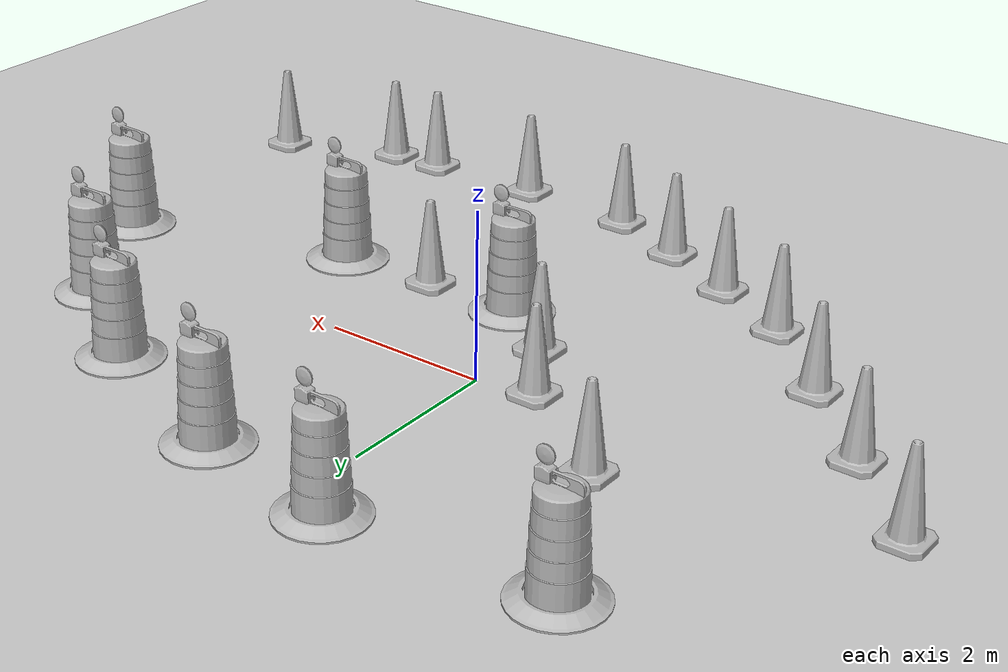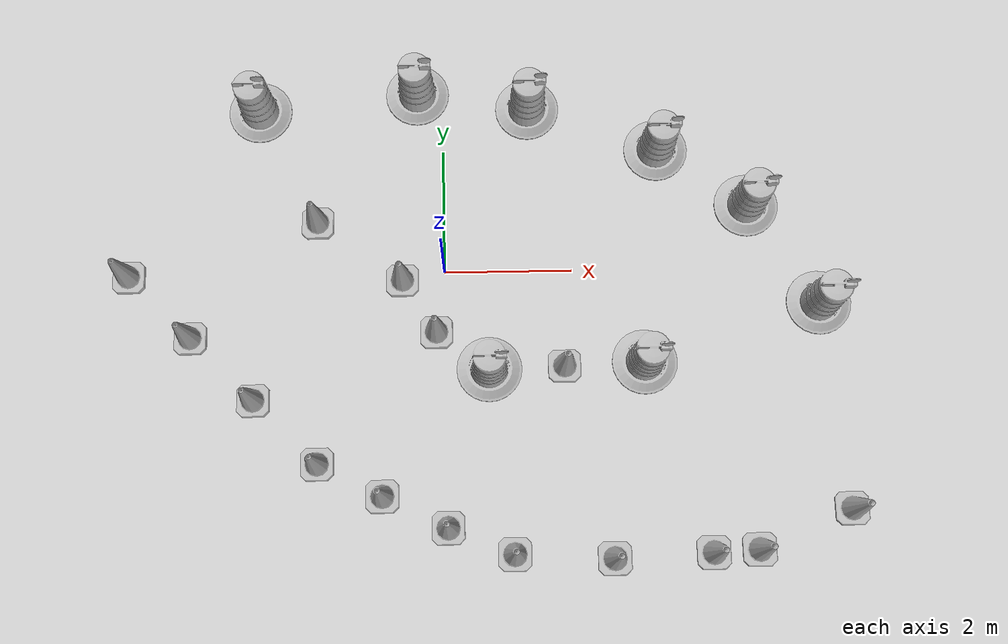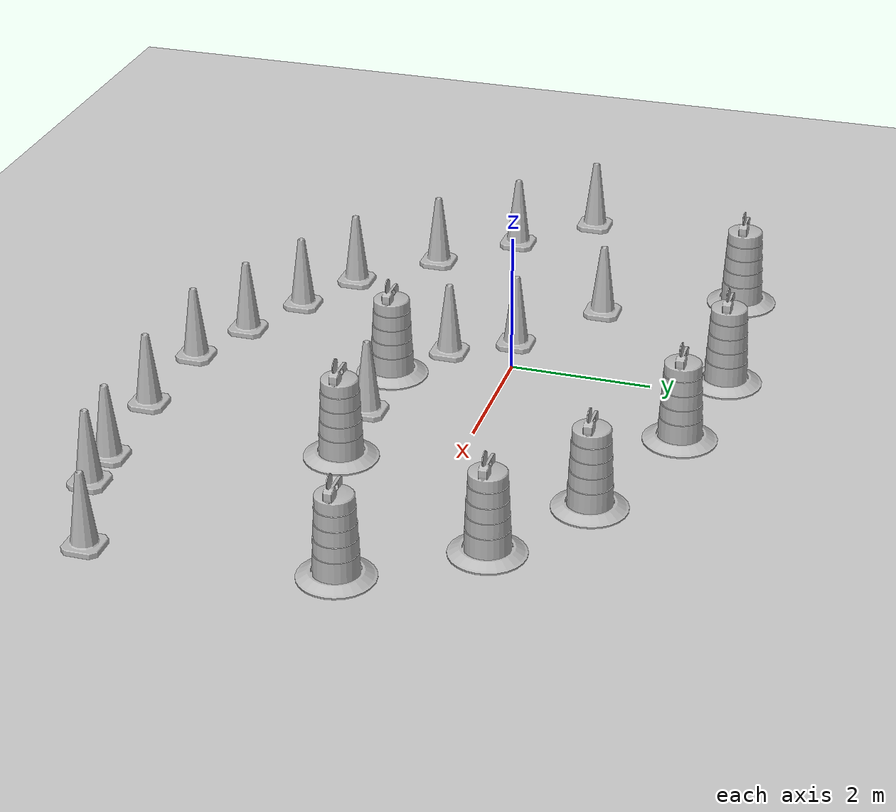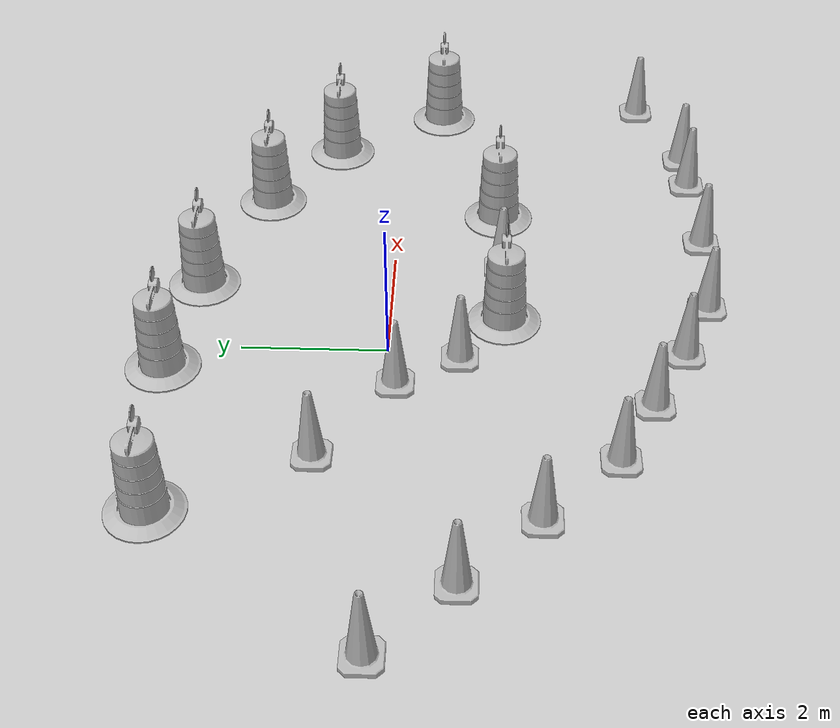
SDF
<sdf version="1.7">
 <world name="default">
  <light name="sun" type="directional">
   <pose>0 0 10 0 -0 0</pose>
   <diffuse>0.8 0.8 0.8 1</diffuse>
   <specular>0.2 0.2 0.2 1</specular>
   <attenuation>
    <range>1000</range>
    <constant>0.9</constant>
    <linear>0.01</linear>
    <quadratic>0.001</quadratic>
   </attenuation>
   <direction>-0.5 0.1 -0.9</direction>
   <spot><inner_angle>0</inner_angle><outer_angle>0</outer_angle><falloff>0</falloff></spot>
  </light>
  <model name="ground_plane">
   <static>1</static>
   <link name="link">
    <collision name="collision">
     <geometry><plane><normal>0 0 1</normal><size>100 100</size></plane></geometry>
     <surface>
      <contact><collide_bitmask>65535</collide_bitmask></contact>
      <friction><ode><mu>100</mu><mu2>50</mu2></ode></friction>
     </surface>
    </collision>
    <visual name="visual">
     <cast_shadows>0</cast_shadows>
     <geometry><plane><normal>0 0 1</normal><size>100 100</size></plane></geometry>
     <material>
      <script><uri>file://media/materials/scripts/gazebo.material</uri><name>Gazebo/Grey</name></script>
     </material>
    </visual>
   </link>
  </model>
  <gravity>0 0 -9.8</gravity>
  <magnetic_field>6e-06 2.3e-05 -4.2e-05</magnetic_field>
  <atmosphere type="adiabatic"/>
  <physics type="ode">
   <max_step_size>0.001</max_step_size>
   <real_time_factor>1</real_time_factor>
   <real_time_update_rate>1000</real_time_update_rate>
  </physics>
  <scene><ambient>0.4 0.4 0.4 1</ambient><background>0.7 0.7 0.7 1</background><shadows>1</shadows></scene>
  <spherical_coordinates>
   <surface_model>EARTH_WGS84</surface_model>
   <latitude_deg>0</latitude_deg>
   <longitude_deg>0</longitude_deg>
   <elevation>0</elevation>
   <heading_deg>0</heading_deg>
  </spherical_coordinates>
  <model name="Construction Barrel">
   <link name="link">
    <inertial>
     <pose>0 0 0.4 0 -0 0</pose>
     <mass>500</mass>
     <inertia><ixx>51.2096</ixx><iyy>51.2096</iyy><izz>25</izz><ixy>0</ixy><ixz>0</ixz><iyz>0</iyz></inertia>
    </inertial>
    <collision name="collision">
     <geometry><mesh><uri>model://construction_barrel/meshes/construction_barrel.dae</uri></mesh></geometry>
    </collision>
    <visual name="visual">
     <geometry><mesh><uri>model://construction_barrel/meshes/construction_barrel.dae</uri></mesh></geometry>
    </visual>
   </link>
   <pose>0.667319 -1.56778 -1e-06 -3e-06 -1e-06 -3.4e-05</pose>
  </model>
  <model name="Construction Cone">
   <link name="link">
    <collision name="collision">
     <geometry>
      <mesh><scale>10 10 10</scale><uri>model://construction_cone/meshes/construction_cone.dae</uri></mesh>
     </geometry>
    </collision>
    <visual name="visual">
     <geometry>
      <mesh><scale>10 10 10</scale><uri>model://construction_cone/meshes/construction_cone.dae</uri></mesh>
     </geometry>
    </visual>
    <inertial>
     <inertia><ixx>1</ixx><ixy>0</ixy><ixz>0</ixz><iyy>1</iyy><iyz>0</iyz><izz>1</izz></inertia>
     <mass>1</mass>
    </inertial>
   </link>
   <pose>1.83883 -1.54133 -1e-05 -0 -0 -0</pose>
  </model>
  <model name="Construction Barrel_0">
   <link name="link">
    <inertial>
     <pose>0 0 0.4 0 -0 0</pose>
     <mass>500</mass>
     <inertia><ixx>51.2096</ixx><iyy>51.2096</iyy><izz>25</izz><ixy>0</ixy><ixz>0</ixz><iyz>0</iyz></inertia>
    </inertial>
    <collision name="collision">
     <geometry><mesh><uri>model://construction_barrel/meshes/construction_barrel.dae</uri></mesh></geometry>
    </collision>
    <visual name="visual">
     <geometry><mesh><uri>model://construction_barrel/meshes/construction_barrel.dae</uri></mesh></geometry>
    </visual>
   </link>
   <pose>3.09268 -1.49477 -1e-06 -3e-06 -1e-06 -3.2e-05</pose>
  </model>
  <model name="Construction Cone_0">
   <link name="link">
    <collision name="collision">
     <geometry>
      <mesh><scale>10 10 10</scale><uri>model://construction_cone/meshes/construction_cone.dae</uri></mesh>
     </geometry>
    </collision>
    <visual name="visual">
     <geometry>
      <mesh><scale>10 10 10</scale><uri>model://construction_cone/meshes/construction_cone.dae</uri></mesh>
     </geometry>
    </visual>
    <inertial>
     <inertia><ixx>1</ixx><ixy>0</ixy><ixz>0</ixz><iyy>1</iyy><iyz>0</iyz><izz>1</izz></inertia>
     <mass>1</mass>
    </inertial>
   </link>
   <pose>-0.148744 -0.970422 -0 0 -0 0</pose>
  </model>
  <model name="Construction Cone_1">
   <link name="link">
    <collision name="collision">
     <geometry>
      <mesh><scale>10 10 10</scale><uri>model://construction_cone/meshes/construction_cone.dae</uri></mesh>
     </geometry>
    </collision>
    <visual name="visual">
     <geometry>
      <mesh><scale>10 10 10</scale><uri>model://construction_cone/meshes/construction_cone.dae</uri></mesh>
     </geometry>
    </visual>
    <inertial>
     <inertia><ixx>1</ixx><ixy>0</ixy><ixz>0</ixz><iyy>1</iyy><iyz>0</iyz><izz>1</izz></inertia>
     <mass>1</mass>
    </inertial>
   </link>
   <pose>-0.675572 -0.1263 -0 0 -1e-06 0</pose>
  </model>
  <model name="Construction Barrel_1">
   <link name="link">
    <inertial>
     <pose>0 0 0.4 0 -0 0</pose>
     <mass>500</mass>
     <inertia><ixx>51.2096</ixx><iyy>51.2096</iyy><izz>25</izz><ixy>0</ixy><ixz>0</ixz><iyz>0</iyz></inertia>
    </inertial>
    <collision name="collision">
     <geometry><mesh><uri>model://construction_barrel/meshes/construction_barrel.dae</uri></mesh></geometry>
    </collision>
    <visual name="visual">
     <geometry><mesh><uri>model://construction_barrel/meshes/construction_barrel.dae</uri></mesh></geometry>
    </visual>
   </link>
   <pose>4.82676 1.01788 -1e-06 -3e-06 -1e-06 -2.8e-05</pose>
  </model>
  <model name="Construction Barrel_1_clone">
   <link name="link">
    <inertial>
     <pose>0 0 0.4 0 -0 0</pose>
     <mass>500</mass>
     <inertia><ixx>51.2096</ixx><iyy>51.2096</iyy><izz>25</izz><ixy>0</ixy><ixz>0</ixz><iyz>0</iyz></inertia>
    </inertial>
    <collision name="collision">
     <geometry><mesh><uri>model://construction_barrel/meshes/construction_barrel.dae</uri></mesh></geometry>
    </collision>
    <visual name="visual">
     <geometry><mesh><uri>model://construction_barrel/meshes/construction_barrel.dae</uri></mesh></geometry>
    </visual>
   </link>
   <pose>3.41905 1.975 -1e-06 -3e-06 -1e-06 -2.9e-05</pose>
  </model>
  <model name="Construction Barrel_1_clone_0">
   <link name="link">
    <inertial>
     <pose>0 0 0.4 0 -0 0</pose>
     <mass>500</mass>
     <inertia><ixx>51.2096</ixx><iyy>51.2096</iyy><izz>25</izz><ixy>0</ixy><ixz>0</ixz><iyz>0</iyz></inertia>
    </inertial>
    <collision name="collision">
     <geometry><mesh><uri>model://construction_barrel/meshes/construction_barrel.dae</uri></mesh></geometry>
    </collision>
    <visual name="visual">
     <geometry><mesh><uri>model://construction_barrel/meshes/construction_barrel.dae</uri></mesh></geometry>
    </visual>
   </link>
   <pose>1.36003 2.71276 -1e-06 -3e-06 -1e-06 -2.8e-05</pose>
  </model>
  <model name="Construction Barrel_1_clone_1">
   <link name="link">
    <inertial>
     <pose>0 0 0.4 0 -0 0</pose>
     <mass>500</mass>
     <inertia><ixx>51.2096</ixx><iyy>51.2096</iyy><izz>25</izz><ixy>0</ixy><ixz>0</ixz><iyz>0</iyz></inertia>
    </inertial>
    <collision name="collision">
     <geometry><mesh><uri>model://construction_barrel/meshes/construction_barrel.dae</uri></mesh></geometry>
    </collision>
    <visual name="visual">
     <geometry><mesh><uri>model://construction_barrel/meshes/construction_barrel.dae</uri></mesh></geometry>
    </visual>
   </link>
   <pose>-0.417481 2.99176 -1e-06 -3e-06 -1e-06 -2.7e-05</pose>
  </model>
  <model name="Construction Barrel_1_clone_2">
   <link name="link">
    <inertial>
     <pose>0 0 0.4 0 -0 0</pose>
     <mass>500</mass>
     <inertia><ixx>51.2096</ixx><iyy>51.2096</iyy><izz>25</izz><ixy>0</ixy><ixz>0</ixz><iyz>0</iyz></inertia>
    </inertial>
    <collision name="collision">
     <geometry><mesh><uri>model://construction_barrel/meshes/construction_barrel.dae</uri></mesh></geometry>
    </collision>
    <visual name="visual">
     <geometry><mesh><uri>model://construction_barrel/meshes/construction_barrel.dae</uri></mesh></geometry>
    </visual>
   </link>
   <pose>-2.97056 2.74116 -1e-06 -3e-06 -1e-06 -2.6e-05</pose>
  </model>
  <model name="Construction Barrel_1_clone_3">
   <link name="link">
    <inertial>
     <pose>0 0 0.4 0 -0 0</pose>
     <mass>500</mass>
     <inertia><ixx>51.2096</ixx><iyy>51.2096</iyy><izz>25</izz><ixy>0</ixy><ixz>0</ixz><iyz>0</iyz></inertia>
    </inertial>
    <collision name="collision">
     <geometry><mesh><uri>model://construction_barrel/meshes/construction_barrel.dae</uri></mesh></geometry>
    </collision>
    <visual name="visual">
     <geometry><mesh><uri>model://construction_barrel/meshes/construction_barrel.dae</uri></mesh></geometry>
    </visual>
   </link>
   <pose>5.87413 -0.597736 -1e-06 -3e-06 -1e-06 -2.4e-05</pose>
  </model>
  <model name="Construction Cone_clone">
   <link name="link">
    <collision name="collision">
     <geometry>
      <mesh><scale>10 10 10</scale><uri>model://construction_cone/meshes/construction_cone.dae</uri></mesh>
     </geometry>
    </collision>
    <visual name="visual">
     <geometry>
      <mesh><scale>10 10 10</scale><uri>model://construction_cone/meshes/construction_cone.dae</uri></mesh>
     </geometry>
    </visual>
    <inertial>
     <inertia><ixx>1</ixx><ixy>0</ixy><ixz>0</ixz><iyy>1</iyy><iyz>0</iyz><izz>1</izz></inertia>
     <mass>1</mass>
    </inertial>
   </link>
   <pose>-2.01995 0.838482 -0 0 -0 0</pose>
  </model>
  <model name="Construction Cone_clone_0">
   <link name="link">
    <collision name="collision">
     <geometry>
      <mesh><scale>10 10 10</scale><uri>model://construction_cone/meshes/construction_cone.dae</uri></mesh>
     </geometry>
    </collision>
    <visual name="visual">
     <geometry>
      <mesh><scale>10 10 10</scale><uri>model://construction_cone/meshes/construction_cone.dae</uri></mesh>
     </geometry>
    </visual>
    <inertial>
     <inertia><ixx>1</ixx><ixy>0</ixy><ixz>0</ixz><iyy>1</iyy><iyz>0</iyz><izz>1</izz></inertia>
     <mass>1</mass>
    </inertial>
   </link>
   <pose>4.69347 -4.40318 -1e-05 -0 -0 -0</pose>
  </model>
  <model name="Construction Cone_clone_1">
   <link name="link">
    <collision name="collision">
     <geometry>
      <mesh><scale>10 10 10</scale><uri>model://construction_cone/meshes/construction_cone.dae</uri></mesh>
     </geometry>
    </collision>
    <visual name="visual">
     <geometry>
      <mesh><scale>10 10 10</scale><uri>model://construction_cone/meshes/construction_cone.dae</uri></mesh>
     </geometry>
    </visual>
    <inertial>
     <inertia><ixx>1</ixx><ixy>0</ixy><ixz>0</ixz><iyy>1</iyy><iyz>0</iyz><izz>1</izz></inertia>
     <mass>1</mass>
    </inertial>
   </link>
   <pose>6.13808 -3.81527 -8e-06 0 1e-06 0</pose>
  </model>
  <model name="Construction Cone_clone_2">
   <link name="link">
    <collision name="collision">
     <geometry>
      <mesh><scale>10 10 10</scale><uri>model://construction_cone/meshes/construction_cone.dae</uri></mesh>
     </geometry>
    </collision>
    <visual name="visual">
     <geometry>
      <mesh><scale>10 10 10</scale><uri>model://construction_cone/meshes/construction_cone.dae</uri></mesh>
     </geometry>
    </visual>
    <inertial>
     <inertia><ixx>1</ixx><ixy>0</ixy><ixz>0</ixz><iyy>1</iyy><iyz>0</iyz><izz>1</izz></inertia>
     <mass>1</mass>
    </inertial>
   </link>
   <pose>-0 -4 -0 0 -1e-06 0</pose>
  </model>
  <model name="Construction Cone_clone_3">
   <link name="link">
    <collision name="collision">
     <geometry>
      <mesh><scale>10 10 10</scale><uri>model://construction_cone/meshes/construction_cone.dae</uri></mesh>
     </geometry>
    </collision>
    <visual name="visual">
     <geometry>
      <mesh><scale>10 10 10</scale><uri>model://construction_cone/meshes/construction_cone.dae</uri></mesh>
     </geometry>
    </visual>
    <inertial>
     <inertia><ixx>1</ixx><ixy>0</ixy><ixz>0</ixz><iyy>1</iyy><iyz>0</iyz><izz>1</izz></inertia>
     <mass>1</mass>
    </inertial>
   </link>
   <pose>1 -4.41043 -8e-06 7e-06 -0 0</pose>
  </model>
  <model name="Construction Cone_clone_4">
   <link name="link">
    <collision name="collision">
     <geometry>
      <mesh><scale>10 10 10</scale><uri>model://construction_cone/meshes/construction_cone.dae</uri></mesh>
     </geometry>
    </collision>
    <visual name="visual">
     <geometry>
      <mesh><scale>10 10 10</scale><uri>model://construction_cone/meshes/construction_cone.dae</uri></mesh>
     </geometry>
    </visual>
    <inertial>
     <inertia><ixx>1</ixx><ixy>0</ixy><ixz>0</ixz><iyy>1</iyy><iyz>0</iyz><izz>1</izz></inertia>
     <mass>1</mass>
    </inertial>
   </link>
   <pose>2.50476 -4.49693 -1e-05 0 -0 0</pose>
  </model>
  <model name="Construction Cone_clone_5">
   <link name="link">
    <collision name="collision">
     <geometry>
      <mesh><scale>10 10 10</scale><uri>model://construction_cone/meshes/construction_cone.dae</uri></mesh>
     </geometry>
    </collision>
    <visual name="visual">
     <geometry>
      <mesh><scale>10 10 10</scale><uri>model://construction_cone/meshes/construction_cone.dae</uri></mesh>
     </geometry>
    </visual>
    <inertial>
     <inertia><ixx>1</ixx><ixy>0</ixy><ixz>0</ixz><iyy>1</iyy><iyz>0</iyz><izz>1</izz></inertia>
     <mass>1</mass>
    </inertial>
   </link>
   <pose>-2 -3 -1e-05 0 -0 0</pose>
  </model>
  <model name="Construction Cone_clone_6">
   <link name="link">
    <collision name="collision">
     <geometry>
      <mesh><scale>10 10 10</scale><uri>model://construction_cone/meshes/construction_cone.dae</uri></mesh>
     </geometry>
    </collision>
    <visual name="visual">
     <geometry>
      <mesh><scale>10 10 10</scale><uri>model://construction_cone/meshes/construction_cone.dae</uri></mesh>
     </geometry>
    </visual>
    <inertial>
     <inertia><ixx>1</ixx><ixy>0</ixy><ixz>0</ixz><iyy>1</iyy><iyz>0</iyz><izz>1</izz></inertia>
     <mass>1</mass>
    </inertial>
   </link>
   <pose>-1 -3.50782 -1e-05 0 -0 0</pose>
  </model>
  <model name="Construction Cone_clone_7">
   <link name="link">
    <collision name="collision">
     <geometry>
      <mesh><scale>10 10 10</scale><uri>model://construction_cone/meshes/construction_cone.dae</uri></mesh>
     </geometry>
    </collision>
    <visual name="visual">
     <geometry>
      <mesh><scale>10 10 10</scale><uri>model://construction_cone/meshes/construction_cone.dae</uri></mesh>
     </geometry>
    </visual>
    <inertial>
     <inertia><ixx>1</ixx><ixy>0</ixy><ixz>0</ixz><iyy>1</iyy><iyz>0</iyz><izz>1</izz></inertia>
     <mass>1</mass>
    </inertial>
   </link>
   <pose>4 -4.43738 -0 0 -0 0</pose>
  </model>
  <model name="Construction Cone_clone_8">
   <link name="link">
    <collision name="collision">
     <geometry>
      <mesh><scale>10 10 10</scale><uri>model://construction_cone/meshes/construction_cone.dae</uri></mesh>
     </geometry>
    </collision>
    <visual name="visual">
     <geometry>
      <mesh><scale>10 10 10</scale><uri>model://construction_cone/meshes/construction_cone.dae</uri></mesh>
     </geometry>
    </visual>
    <inertial>
     <inertia><ixx>1</ixx><ixy>0</ixy><ixz>0</ixz><iyy>1</iyy><iyz>0</iyz><izz>1</izz></inertia>
     <mass>1</mass>
    </inertial>
   </link>
   <pose>-3 -2 -0 0 -1e-06 0</pose>
  </model>
  <model name="Construction Cone_clone_9">
   <link name="link">
    <collision name="collision">
     <geometry>
      <mesh><scale>10 10 10</scale><uri>model://construction_cone/meshes/construction_cone.dae</uri></mesh>
     </geometry>
    </collision>
    <visual name="visual">
     <geometry>
      <mesh><scale>10 10 10</scale><uri>model://construction_cone/meshes/construction_cone.dae</uri></mesh>
     </geometry>
    </visual>
    <inertial>
     <inertia><ixx>1</ixx><ixy>0</ixy><ixz>0</ixz><iyy>1</iyy><iyz>0</iyz><izz>1</izz></inertia>
     <mass>1</mass>
    </inertial>
   </link>
   <pose>-4 -1 0 -0 -0 -0</pose>
  </model>
  <model name="Construction Cone_clone_10">
   <link name="link">
    <collision name="collision">
     <geometry>
      <mesh><scale>10 10 10</scale><uri>model://construction_cone/meshes/construction_cone.dae</uri></mesh>
     </geometry>
    </collision>
    <visual name="visual">
     <geometry>
      <mesh><scale>10 10 10</scale><uri>model://construction_cone/meshes/construction_cone.dae</uri></mesh>
     </geometry>
    </visual>
    <inertial>
     <inertia><ixx>1</ixx><ixy>0</ixy><ixz>0</ixz><iyy>1</iyy><iyz>0</iyz><izz>1</izz></inertia>
     <mass>1</mass>
    </inertial>
   </link>
   <pose>-5 0 -0 0 -1e-06 0</pose>
  </model>
 </world>
</sdf>
